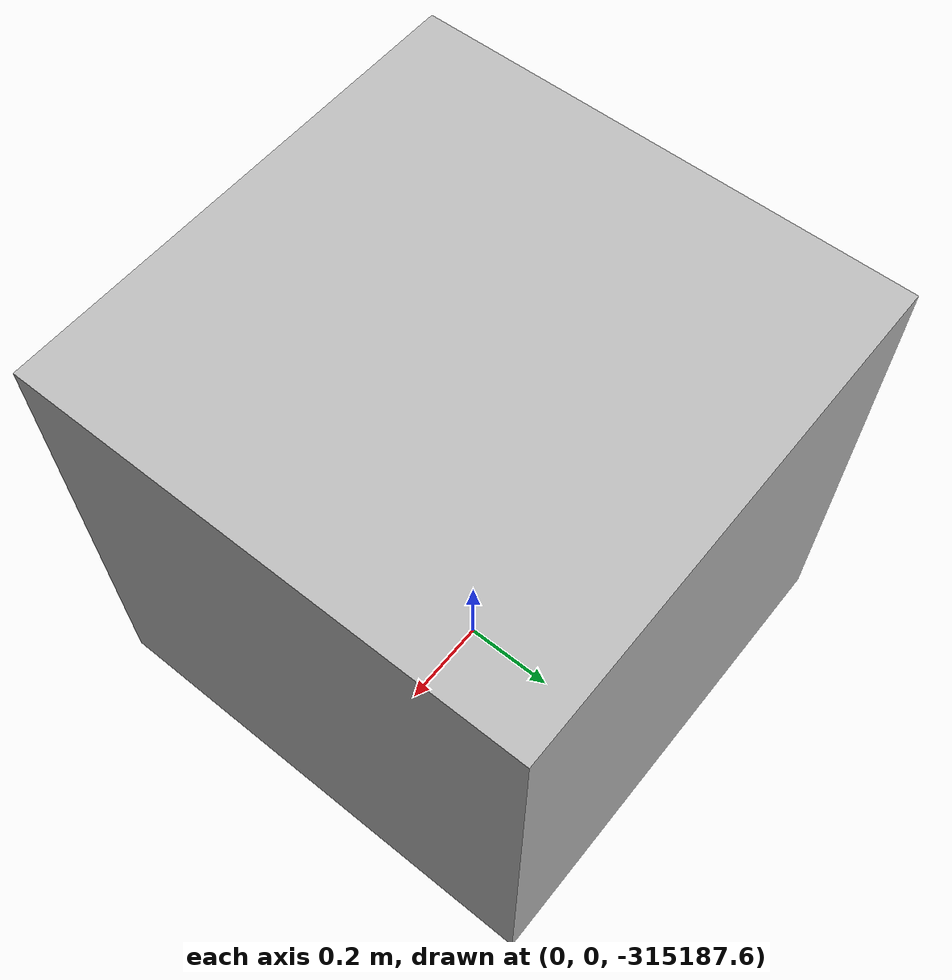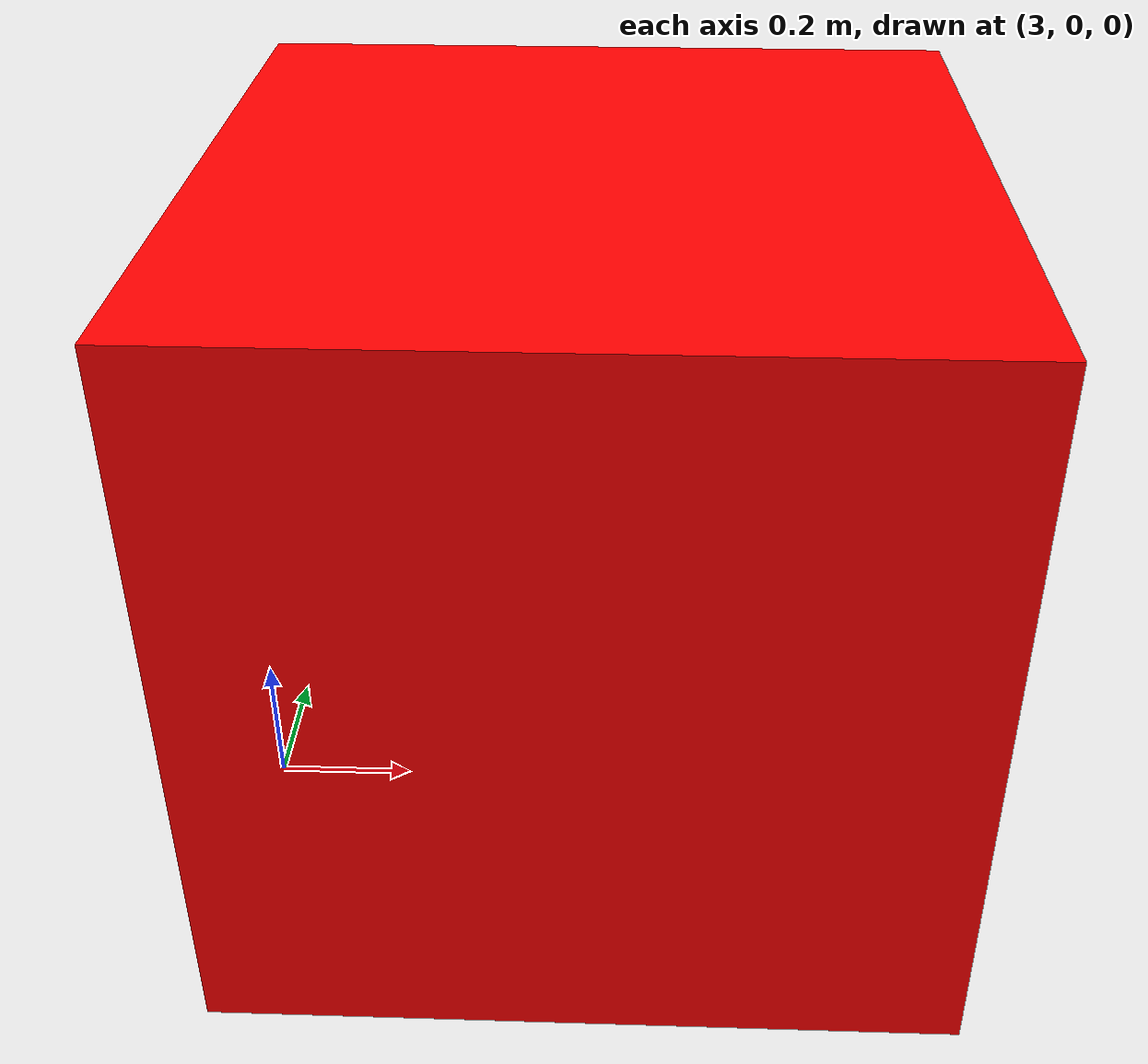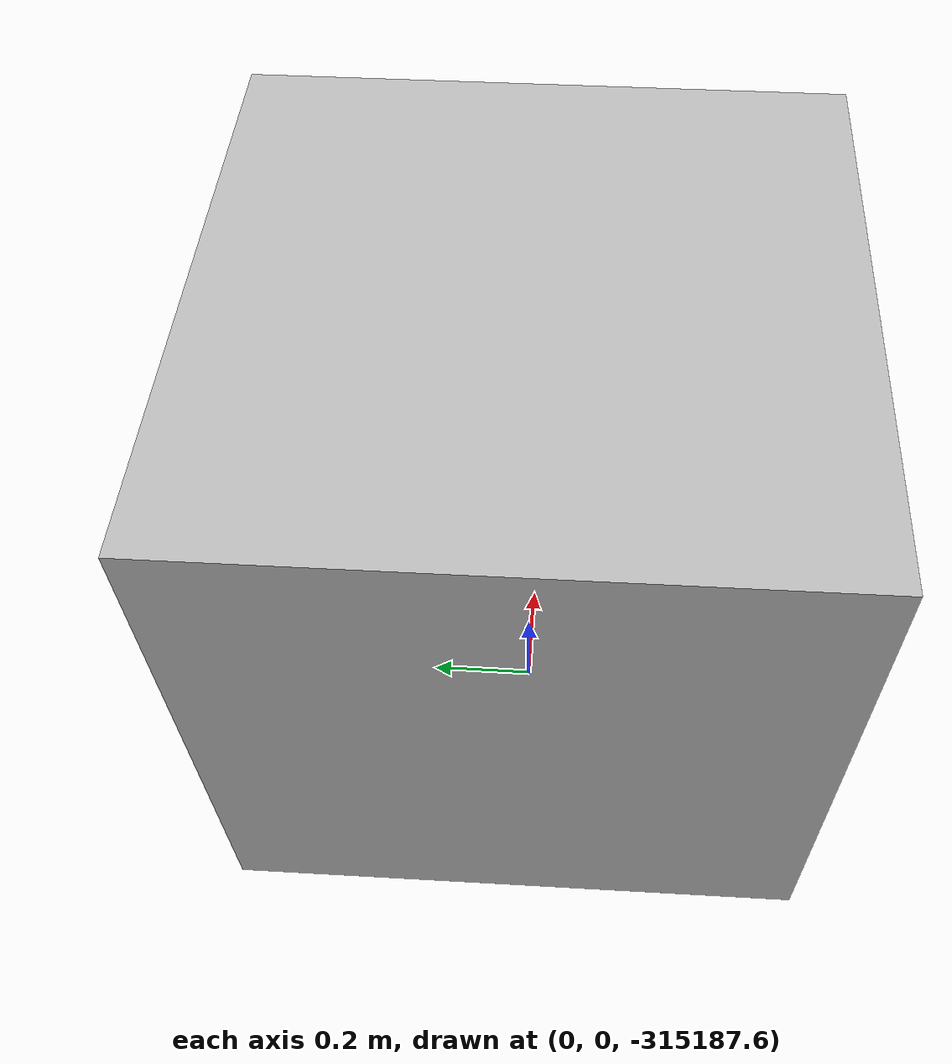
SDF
<sdf version="1.6">
 <world name="default">
  <model name="unit_box">
   <pose>0 0 -315187 0 -0 0</pose>
   <link name="link">
    <visual name="visual"><geometry><box><size>1 1 1</size></box></geometry></visual>
    <inertial>
     <inertia><ixx>1</ixx><ixy>0</ixy><ixz>0</ixz><iyy>1</iyy><iyz>0</iyz><izz>1</izz></inertia>
     <mass>1</mass>
    </inertial>
   </link>
  </model>
  <model name="sensor/0">
   <static>1</static>
   <link name="link">
    <sensor name="webcam" type="camera">
     <plugin name="webcam_plugin" filename="libgazebo_ros_camera.so">
      <robotNamespace>camera_plugin</robotNamespace>
      <updateRate>10.0</updateRate>
      <cameraName>webcam</cameraName>
     </plugin>
     <camera name="__default__">
      <save enabled="1"><path>/tmp/camera_save_tutorial</path></save>
      <horizontal_fov>0.1</horizontal_fov>
      <image><width>100</width><height>100</height><format>R8G8B8</format></image>
      <clip><near>0.1</near><far>100</far></clip>
     </camera>
     <visualize>1</visualize>
     <always_on>1</always_on>
    </sensor>
   </link>
  </model>
  <gravity>0 0 -9.8</gravity>
  <magnetic_field>6e-06 2.3e-05 -4.2e-05</magnetic_field>
  <atmosphere type="adiabatic"/>
  <physics name="default_physics" default="0" type="ode">
   <max_step_size>0.001</max_step_size>
   <real_time_factor>1</real_time_factor>
   <real_time_update_rate>1000</real_time_update_rate>
  </physics>
  <scene><ambient>0.4 0.4 0.4 1</ambient><background>0.7 0.7 0.7 1</background><shadows>1</shadows></scene>
  <audio><device>default</device></audio>
  <spherical_coordinates>
   <surface_model>EARTH_WGS84</surface_model>
   <latitude_deg>0</latitude_deg>
   <longitude_deg>0</longitude_deg>
   <elevation>0</elevation>
   <heading_deg>0</heading_deg>
  </spherical_coordinates>
  <model name="ground_plane">
   <static>1</static>
   <link name="link">
    <collision name="collision">
     <geometry><plane><normal>0 0 1</normal><size>100 100</size></plane></geometry>
     <surface>
      <contact><collide_bitmask>65535</collide_bitmask></contact>
      <friction><ode><mu>100</mu><mu2>50</mu2></ode></friction>
     </surface>
    </collision>
    <visual name="visual">
     <cast_shadows>0</cast_shadows>
     <geometry><plane><normal>0 0 1</normal><size>100 100</size></plane></geometry>
     <material>
      <script><uri>file://media/materials/scripts/gazebo.material</uri><name>Gazebo/Grey</name></script>
     </material>
    </visual>
   </link>
   <pose>1.30796 -1.65859 0 0 -0 0</pose>
  </model>
  <model name="unit_box_0">
   <link name="link">
    <inertial>
     <mass>1</mass>
     <inertia>
      <ixx>0.166667</ixx>
      <ixy>0</ixy>
      <ixz>0</ixz>
      <iyy>0.166667</iyy>
      <iyz>0</iyz>
      <izz>0.166667</izz>
     </inertia>
    </inertial>
    <visual name="visual">
     <geometry><box><size>1 1 1</size></box></geometry>
     <material>
      <script><name>Gazebo/Grey</name><uri>file://media/materials/scripts/gazebo.material</uri></script>
      <ambient>1 0 0 0</ambient>
      <shader type="vertex"><normal_map>__default__</normal_map></shader>
      <diffuse>0.7 0.7 0.7 1</diffuse>
      <specular>0.01 0.01 0.01 1</specular>
      <emissive>0 0 0 1</emissive>
     </material>
    </visual>
    <collision name="collision">
     <geometry><box><size>1 1 1</size></box></geometry>
     <surface>
      <friction>
       <ode><mu>1</mu><mu2>1</mu2><fdir1>0 0 0</fdir1><slip1>0</slip1><slip2>0</slip2></ode>
       <torsional>
        <coefficient>1</coefficient>
        <patch_radius>0</patch_radius>
        <surface_radius>0</surface_radius>
        <use_patch_radius>1</use_patch_radius>
        <ode><slip>0</slip></ode>
       </torsional>
      </friction>
      <bounce><restitution_coefficient>0</restitution_coefficient><threshold>1e+06</threshold></bounce>
      <contact>
       <collide_without_contact>0</collide_without_contact>
       <collide_without_contact_bitmask>1</collide_without_contact_bitmask>
       <collide_bitmask>1</collide_bitmask>
       <ode>
        <soft_cfm>0</soft_cfm>
        <soft_erp>0.2</soft_erp>
        <kp>1e+13</kp>
        <kd>1</kd>
        <max_vel>0.01</max_vel>
        <min_depth>0</min_depth>
       </ode>
       <bullet>
        <split_impulse>1</split_impulse>
        <split_impulse_penetration_threshold>-0.01</split_impulse_penetration_threshold>
        <soft_cfm>0</soft_cfm>
        <soft_erp>0.2</soft_erp>
        <kp>1e+13</kp>
        <kd>1</kd>
       </bullet>
      </contact>
     </surface>
    </collision>
   </link>
   <static>0</static>
   <pose>3.49337 0.022081 0.5 0 -0 0</pose>
  </model>
 </world>
</sdf>
